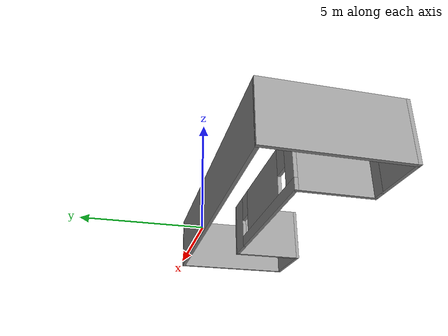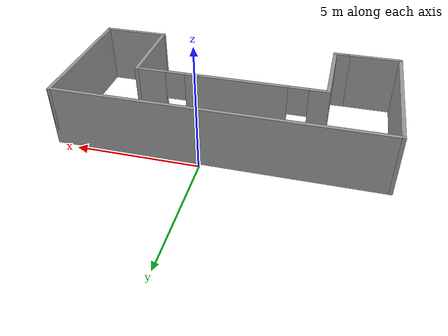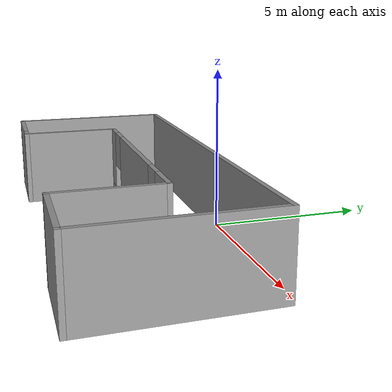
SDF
<?xml version='1.0'?>
<sdf version='1.6'>
  <model name='myMapModel'>
    <pose frame=''>-0.595 -2.885 0 0 -0 0</pose>
    <link name='Wall_0'>
      <collision name='Wall_0_Collision'>
        <geometry>
          <box>
            <size>2.25 0.15 2.5</size>
          </box>
        </geometry>
        <pose frame=''>0 0 1.25 0 -0 0</pose>
      </collision>
      <visual name='Wall_0_Visual'>
        <pose frame=''>0 0 1.25 0 -0 0</pose>
        <geometry>
          <box>
            <size>2.25 0.15 2.5</size>
          </box>
        </geometry>
        <material>
          <script>
            <uri>file://media/materials/scripts/gazebo.material</uri>
            <name>Gazebo/Grey</name>
          </script>
          <ambient>1 1 1 1</ambient>
        </material>
        <meta>
          <layer>0</layer>
        </meta>
      </visual>
      <pose frame=''>-5.375 -2.675 0 0 -0 3.14159</pose>
    </link>
    <link name='Wall_1'>
      <collision name='Wall_1_Collision'>
        <geometry>
          <box>
            <size>5.5 0.15 2.5</size>
          </box>
        </geometry>
        <pose frame=''>0 0 1.25 0 -0 0</pose>
      </collision>
      <visual name='Wall_1_Visual'>
        <pose frame=''>0 0 1.25 0 -0 0</pose>
        <geometry>
          <box>
            <size>5.5 0.15 2.5</size>
          </box>
        </geometry>
        <material>
          <script>
            <uri>file://media/materials/scripts/gazebo.material</uri>
            <name>Gazebo/Grey</name>
          </script>
          <ambient>1 1 1 1</ambient>
        </material>
        <meta>
          <layer>0</layer>
        </meta>
      </visual>
      <pose frame=''>-6.425 0 0 0 -0 1.5708</pose>
    </link>
    <link name='Wall_2'>
      <collision name='Wall_2_Collision'>
        <geometry>
          <box>
            <size>13 0.15 2.5</size>
          </box>
        </geometry>
        <pose frame=''>0 0 1.25 0 -0 0</pose>
      </collision>
      <visual name='Wall_2_Visual'>
        <pose frame=''>0 0 1.25 0 -0 0</pose>
        <geometry>
          <box>
            <size>13 0.15 2.5</size>
          </box>
        </geometry>
        <material>
          <script>
            <uri>file://media/materials/scripts/gazebo.material</uri>
            <name>Gazebo/Grey</name>
          </script>
          <ambient>1 1 1 1</ambient>
        </material>
        <meta>
          <layer>0</layer>
        </meta>
      </visual>
      <pose frame=''>0 2.675 0 0 -0 0</pose>
    </link>
    <link name='Wall_3'>
      <collision name='Wall_3_Collision'>
        <geometry>
          <box>
            <size>5.5 0.15 2.5</size>
          </box>
        </geometry>
        <pose frame=''>0 0 1.25 0 -0 0</pose>
      </collision>
      <visual name='Wall_3_Visual'>
        <pose frame=''>0 0 1.25 0 -0 0</pose>
        <geometry>
          <box>
            <size>5.5 0.15 2.5</size>
          </box>
        </geometry>
        <material>
          <script>
            <uri>file://media/materials/scripts/gazebo.material</uri>
            <name>Gazebo/Grey</name>
          </script>
          <ambient>1 1 1 1</ambient>
        </material>
        <meta>
          <layer>0</layer>
        </meta>
      </visual>
      <pose frame=''>6.425 0 0 0 0 -1.5708</pose>
    </link>
    <link name='Wall_4'>
      <collision name='Wall_4_Collision'>
        <geometry>
          <box>
            <size>2.75 0.15 2.5</size>
          </box>
        </geometry>
        <pose frame=''>0 0 1.25 0 -0 0</pose>
      </collision>
      <visual name='Wall_4_Visual'>
        <pose frame=''>0 0 1.25 0 -0 0</pose>
        <geometry>
          <box>
            <size>2.75 0.15 2.5</size>
          </box>
        </geometry>
        <material>
          <script>
            <uri>file://media/materials/scripts/gazebo.material</uri>
            <name>Gazebo/Grey</name>
          </script>
          <ambient>1 1 1 1</ambient>
        </material>
        <meta>
          <layer>0</layer>
        </meta>
      </visual>
      <pose frame=''>5.125 -2.675 0 0 -0 3.14159</pose>
    </link>
    <link name='Wall_5'>
      <collision name='Wall_5_Collision'>
        <geometry>
          <box>
            <size>3.25 0.15 2.5</size>
          </box>
        </geometry>
        <pose frame=''>0 0 1.25 0 -0 0</pose>
      </collision>
      <visual name='Wall_5_Visual'>
        <pose frame=''>0 0 1.25 0 -0 0</pose>
        <geometry>
          <box>
            <size>3.25 0.15 2.5</size>
          </box>
        </geometry>
        <material>
          <script>
            <uri>file://media/materials/scripts/gazebo.material</uri>
            <name>Gazebo/Grey</name>
          </script>
          <ambient>1 1 1 1</ambient>
        </material>
        <meta>
          <layer>0</layer>
        </meta>
      </visual>
      <pose frame=''>3.825 -1.125 0 0 -0 1.5708</pose>
    </link>
    <link name='Wall_6'>
      <pose frame=''>0.025 0.425 0 0 -0 3.14159</pose>
      <visual name='Wall_6_Visual_0'>
        <pose frame=''>-3.2325 0 1.25 0 -0 0</pose>
        <geometry>
          <box>
            <size>1.285 0.15 2.5</size>
          </box>
        </geometry>
        <material>
          <script>
            <uri>file://media/materials/scripts/gazebo.material</uri>
            <name>Gazebo/Grey</name>
          </script>
          <ambient>1 1 1 1</ambient>
        </material>
        <meta>
          <layer>0</layer>
        </meta>
      </visual>
      <collision name='Wall_6_Collision_0'>
        <geometry>
          <box>
            <size>1.285 0.15 2.5</size>
          </box>
        </geometry>
        <pose frame=''>-3.2325 0 1.25 0 -0 0</pose>
      </collision>
      <visual name='Wall_6_Visual_1'>
        <pose frame=''>0.6425 0 0.25 0 -0 0</pose>
        <geometry>
          <box>
            <size>6.465 0.15 0.5</size>
          </box>
        </geometry>
        <material>
          <script>
            <uri>file://media/materials/scripts/gazebo.material</uri>
            <name>Gazebo/Grey</name>
          </script>
          <ambient>1 1 1 1</ambient>
        </material>
        <meta>
          <layer>0</layer>
        </meta>
      </visual>
      <collision name='Wall_6_Collision_1'>
        <geometry>
          <box>
            <size>6.465 0.15 0.5</size>
          </box>
        </geometry>
        <pose frame=''>0.6425 0 0.25 0 -0 0</pose>
      </collision>
      <visual name='Wall_6_Visual_2'>
        <pose frame=''>0.245 0 1.5 0 -0 0</pose>
        <geometry>
          <box>
            <size>4.07 0.15 2</size>
          </box>
        </geometry>
        <material>
          <script>
            <uri>file://media/materials/scripts/gazebo.material</uri>
            <name>Gazebo/Grey</name>
          </script>
          <ambient>1 1 1 1</ambient>
        </material>
        <meta>
          <layer>0</layer>
        </meta>
      </visual>
      <collision name='Wall_6_Collision_2'>
        <geometry>
          <box>
            <size>4.07 0.15 2</size>
          </box>
        </geometry>
        <pose frame=''>0.245 0 1.5 0 -0 0</pose>
      </collision>
      <visual name='Wall_6_Visual_3'>
        <pose frame=''>3.4775 0 1.5 0 -0 0</pose>
        <geometry>
          <box>
            <size>0.795 0.15 2</size>
          </box>
        </geometry>
        <material>
          <script>
            <uri>file://media/materials/scripts/gazebo.material</uri>
            <name>Gazebo/Grey</name>
          </script>
          <ambient>1 1 1 1</ambient>
        </material>
        <meta>
          <layer>0</layer>
        </meta>
      </visual>
      <collision name='Wall_6_Collision_3'>
        <geometry>
          <box>
            <size>0.795 0.15 2</size>
          </box>
        </geometry>
        <pose frame=''>3.4775 0 1.5 0 -0 0</pose>
      </collision>
      <visual name='Wall_6_Visual_4'>
        <pose frame=''>-2.19 0 1.9 0 -0 0</pose>
        <geometry>
          <box>
            <size>0.8 0.15 1.2</size>
          </box>
        </geometry>
        <material>
          <script>
            <uri>file://media/materials/scripts/gazebo.material</uri>
            <name>Gazebo/Grey</name>
          </script>
          <ambient>1 1 1 1</ambient>
        </material>
        <meta>
          <layer>0</layer>
        </meta>
      </visual>
      <collision name='Wall_6_Collision_4'>
        <geometry>
          <box>
            <size>0.8 0.15 1.2</size>
          </box>
        </geometry>
        <pose frame=''>-2.19 0 1.9 0 -0 0</pose>
      </collision>
      <visual name='Wall_6_Visual_5'>
        <pose frame=''>2.68 0 1.9 0 -0 0</pose>
        <geometry>
          <box>
            <size>0.8 0.15 1.2</size>
          </box>
        </geometry>
        <material>
          <script>
            <uri>file://media/materials/scripts/gazebo.material</uri>
            <name>Gazebo/Grey</name>
          </script>
          <ambient>1 1 1 1</ambient>
        </material>
        <meta>
          <layer>0</layer>
        </meta>
      </visual>
      <collision name='Wall_6_Collision_5'>
        <geometry>
          <box>
            <size>0.8 0.15 1.2</size>
          </box>
        </geometry>
        <pose frame=''>2.68 0 1.9 0 -0 0</pose>
      </collision>
    </link>
    <link name='Wall_7'>
      <collision name='Wall_7_Collision'>
        <geometry>
          <box>
            <size>3.25 0.15 2.5</size>
          </box>
        </geometry>
        <pose frame=''>0 0 1.25 0 -0 0</pose>
      </collision>
      <visual name='Wall_7_Visual'>
        <pose frame=''>0 0 1.25 0 -0 0</pose>
        <geometry>
          <box>
            <size>3.25 0.15 2.5</size>
          </box>
        </geometry>
        <material>
          <script>
            <uri>file://media/materials/scripts/gazebo.material</uri>
            <name>Gazebo/Grey</name>
          </script>
          <ambient>1 1 1 1</ambient>
        </material>
        <meta>
          <layer>0</layer>
        </meta>
      </visual>
      <pose frame=''>-3.775 -1.125 0 0 0 -1.5708</pose>
    </link>
    <link name='Wall_8'>
      <collision name='Wall_8_Collision'>
        <geometry>
          <box>
            <size>0.7 0.15 2.5</size>
          </box>
        </geometry>
        <pose frame=''>0 0 1.25 0 -0 0</pose>
      </collision>
      <visual name='Wall_8_Visual'>
        <pose frame=''>0 0 1.25 0 -0 0</pose>
        <geometry>
          <box>
            <size>0.7 0.15 2.5</size>
          </box>
        </geometry>
        <material>
          <script>
            <uri>file://media/materials/scripts/gazebo.material</uri>
            <name>Gazebo/Grey</name>
          </script>
          <ambient>1 1 1 1</ambient>
        </material>
        <meta>
          <layer>0</layer>
        </meta>
      </visual>
      <pose frame=''>-4.05 -2.675 0 0 -0 3.14159</pose>
    </link>
    <static>1</static>
  </model>
</sdf>
